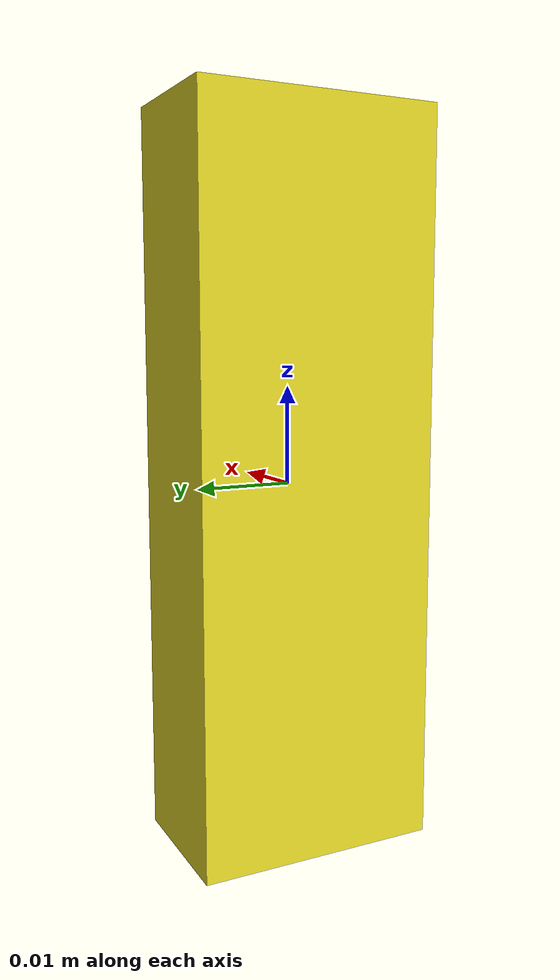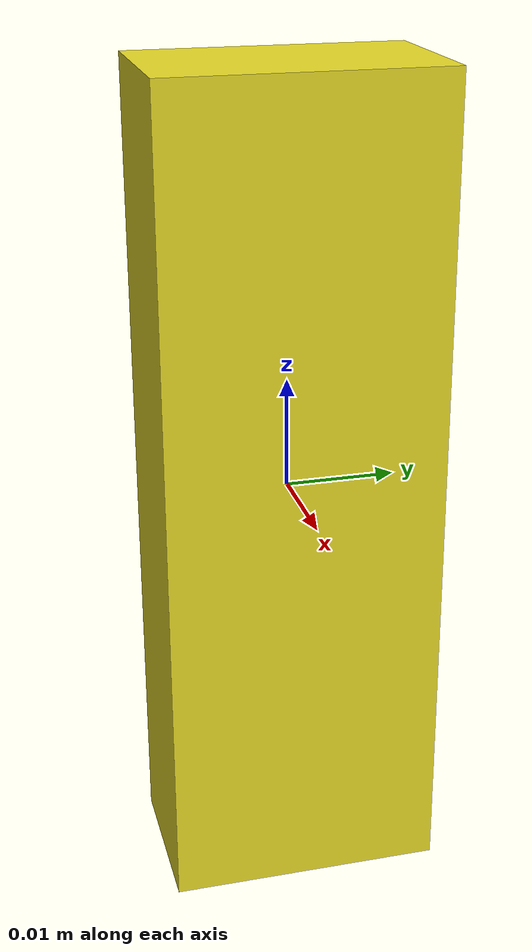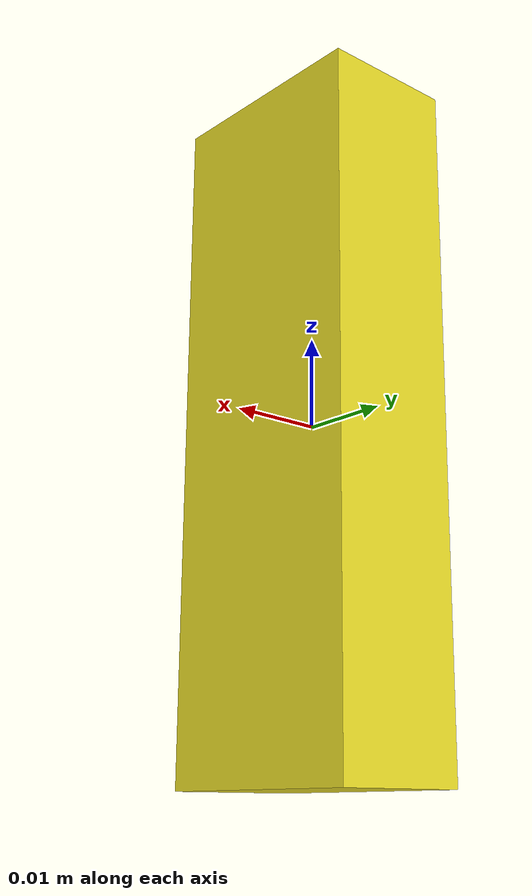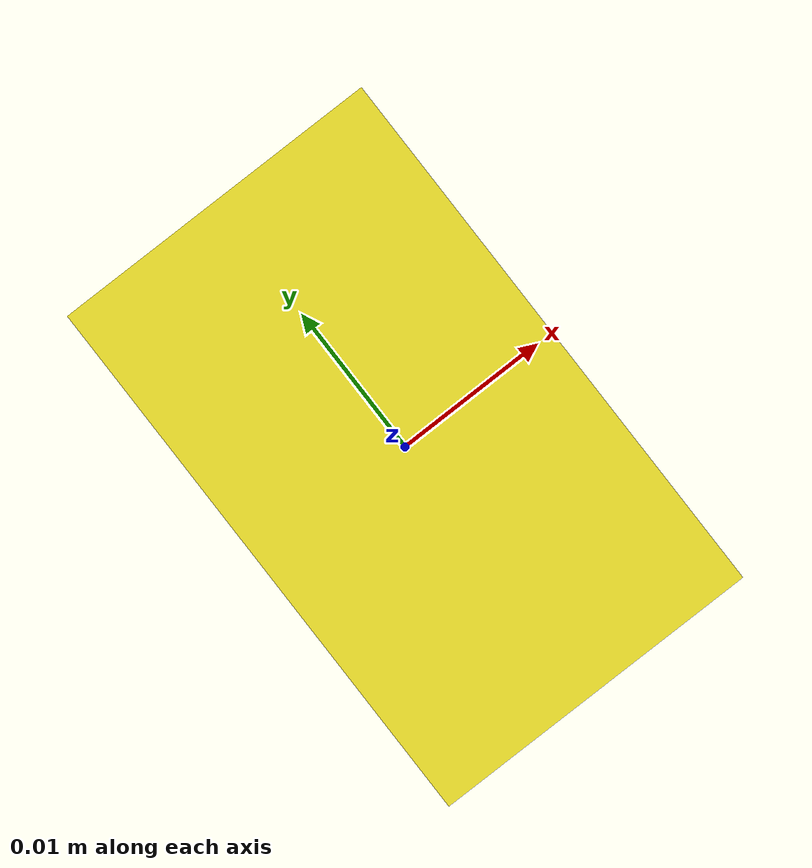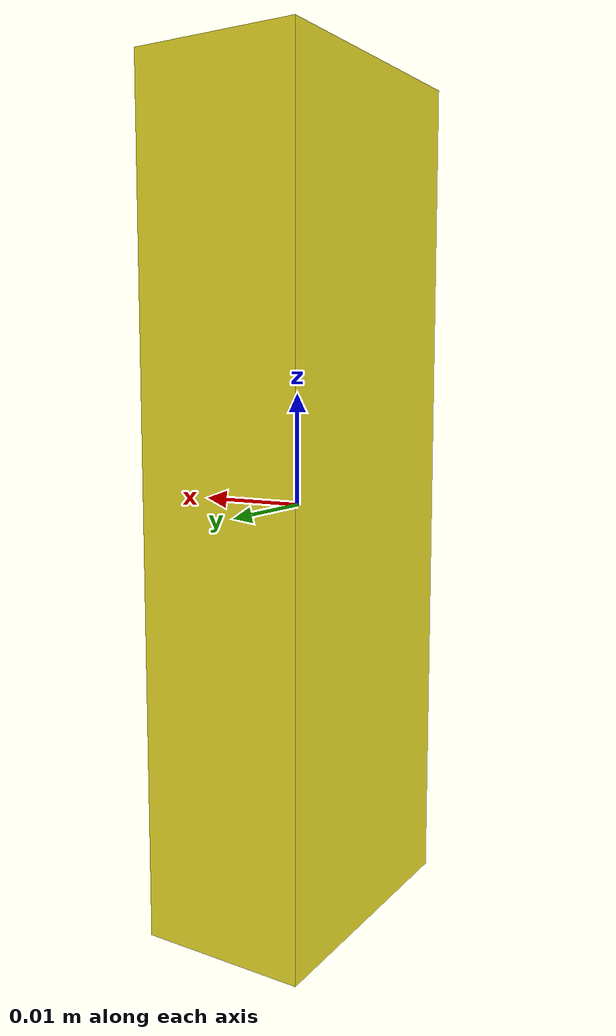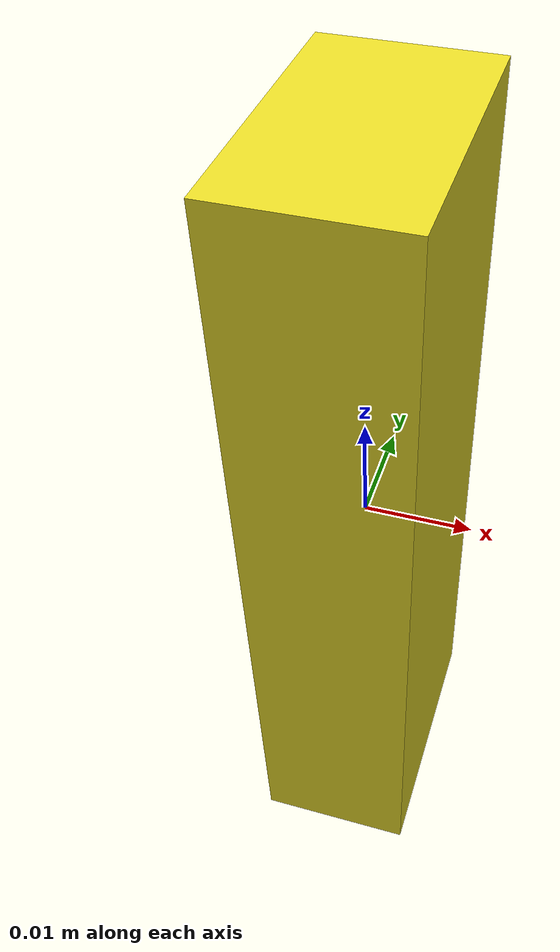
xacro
<?xml version="1.0" encoding="UTF-8"?>
<robot name="jenga_block" xmlns:xacro="http://ros.org/wiki/xacro">
   <xacro:property name="M_SCALE" value="0.001"/>
   <xacro:property name="FRAME_SCALE" value="0.0254"/>
   <xacro:property name="M_PI" value="3.14159"/>

   <xacro:include filename="$(find widowx_arm_description)/urdf/common_materials.xacro" />

      <!-- links -->
      <link name="jenga_block_link">
         <visual>
            <origin xyz="0 0 0" rpy="0 0 0" />
            <geometry>
		<box size="${M_SCALE*15} ${M_SCALE*25} ${M_SCALE*75}" />
            </geometry>
            <xacro:material_yellow />
             </visual>
         <collision>
            <origin xyz="0 0 0" rpy="0 0 0" />
            <geometry>
		<box size="${M_SCALE*15} ${M_SCALE*25} ${M_SCALE*75}" />
            </geometry>
         </collision>
         <inertial>
            <origin xyz="0 0 0" rpy="0 0 0" />
            <mass value="0.0106875" />
            <inertia ixx="0.000005566" ixy="0.0" ixz="0.0" iyy="0.00000521" iyz="0.0" izz="0.000000757" />
         </inertial>
      </link>
      <gazebo reference="jenga_block_link">

	<collision><surface>
		<bounce><threshold>100000</threshold></bounce>
	<friction>
	<ode>
        	<mu>0.25</mu>
		<mu2>0.25</mu2>
	        <slip1>0.0</slip1>
		<slip2>0.0</slip2>
	</ode>
	<bullet>
        	<friction>0.25</friction>
		<friction2>0.25</friction2>
	</bullet>

	</friction>

	<contact>
		<ode><kd>100</kd></ode>
		<bullet><kp>1000000000</kp><kd>100</kd><soft_erp>0.20</soft_erp></bullet>

	</contact>
	</surface></collision>

	<material>Gazebo/Yellow</material>
      </gazebo>

</robot>
